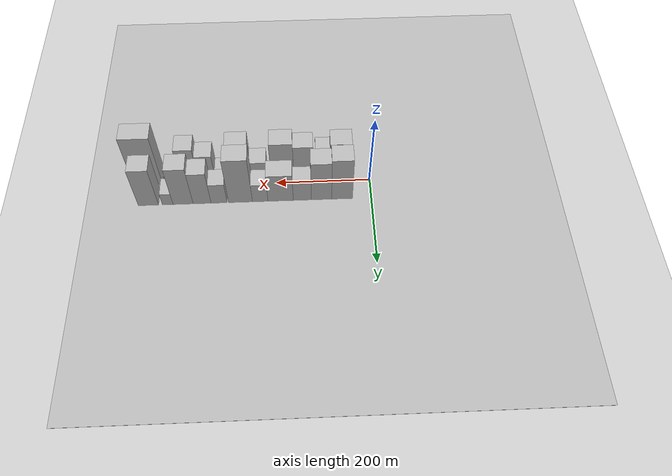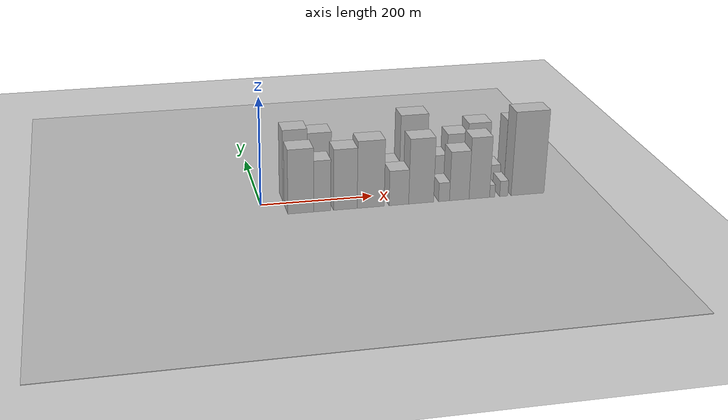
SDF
<?xml version="1.0" encoding="utf-8"?>

<sdf version="1.6">

   <world name="default">

      <gui fullscreen="0">

         <camera name="user_camera">

            <pose>-15 0 4.57585 0 0 0</pose>

            <view_controller>orbit</view_controller>

         </camera>

      </gui>

      <scene>

         <sky>

           <clouds>

             <speed>12</speed>

           </clouds>

         </sky>

         <ambient>0.4 0.4 0.4 1</ambient>

         <background>0.7 0.7 0.7 1</background>

         <shadows>1</shadows>

      </scene>

      <gravity>0 0 -9.8066</gravity>

      <magnetic_field>6e-06 2.3e-05 -4.2e-05</magnetic_field>

      <physics default="0" name="default_physics" type="ode">

         <ode>

            <solver>

               <type>quick</type>

               <iters>10</iters>

               <sor>1.0</sor>

               <use_dynamic_moi_rescaling>0</use_dynamic_moi_rescaling>

            </solver>

            <constraints>

               <cfm>0</cfm>

               <erp>0.2</erp>

               <contact_max_correcting_vel>100</contact_max_correcting_vel>

               <contact_surface_layer>0.001</contact_surface_layer>

            </constraints>

         </ode>

         <max_step_size>0.004</max_step_size>

         <real_time_factor>1</real_time_factor>

         <real_time_update_rate>250</real_time_update_rate>

      </physics>

      <light name="sun" type="directional">

         <cast_shadows>1</cast_shadows>

         <pose>0 0 10 0 0 0</pose>

         <diffuse>0.8 0.8 0.8 1</diffuse>

         <specular>0.2 0.2 0.2 1</specular>

         <attenuation>

            <range>1000</range>

            <constant>0.9</constant>

            <linear>0.01</linear>

            <quadratic>0.001</quadratic>

         </attenuation>

         <direction>-0.5 0.1 -0.9</direction>

      </light>

      <include>

         <name>ground_plane_1</name>

         <uri>model://HANNAS_ground_plane</uri>

         <pose>0 0 0  0 0 0</pose>

      </include>

      <include>

         <name>ground_plane_2</name>

         <uri>model://HANNAS_ground_plane</uri>

         <pose>100 0 0  0 0 0</pose>

      </include>

      <model name="building_1">

         <static>1</static>

         <pose frame="">61.9810 26.0000 0 0.000000 0.000000 1.570796</pose>

         <link name="link">

            <pose frame="">0 0 67.50 0 0 0</pose>

            <collision name="collision">

               <geometry>

                  <box>

                     <size>40.0000 43.9621 135.0000</size>

                  </box>

               </geometry>

               <max_contacts>10</max_contacts>

               <surface>

                  <contact>

                     <ode/>

                  </contact>

                  <bounce/>

                  <friction>

                     <torsional>

                        <ode/>

                     </torsional>

                     <ode/>

                  </friction>

               </surface>

            </collision>

            <visual name="visual">

               <cast_shadows>0</cast_shadows>

               <geometry>

                  <box>

                     <size>40.0000 43.9621 135.0000</size>

                  </box>

               </geometry>

               <material>

                  <script>

                     <uri>model://HANNAS_wall/materials/scripts</uri>

                     <uri>model://HANNAS_wall/materials/textures</uri>

                     <name>vrc/HANNAS_wall</name>

                  </script>

               </material>

            </visual>

            <self_collide>0</self_collide>

            <enable_wind>0</enable_wind>

            <kinematic>0</kinematic>

         </link>

      </model>

      <model name="building_2">

         <static>1</static>

         <pose frame="">105.4015 26.0000 0 0.000000 0.000000 1.570796</pose>

         <link name="link">

            <pose frame="">0 0 63.00 0 0 0</pose>

            <collision name="collision">

               <geometry>

                  <box>

                     <size>40.0000 42.8789 126.0000</size>

                  </box>

               </geometry>

               <max_contacts>10</max_contacts>

               <surface>

                  <contact>

                     <ode/>

                  </contact>

                  <bounce/>

                  <friction>

                     <torsional>

                        <ode/>

                     </torsional>

                     <ode/>

                  </friction>

               </surface>

            </collision>

            <visual name="visual">

               <cast_shadows>0</cast_shadows>

               <geometry>

                  <box>

                     <size>40.0000 42.8789 126.0000</size>

                  </box>

               </geometry>

               <material>

                  <script>

                     <uri>model://HANNAS_wall/materials/scripts</uri>

                     <uri>model://HANNAS_wall/materials/textures</uri>

                     <name>vrc/HANNAS_wall</name>

                  </script>

               </material>

            </visual>

            <self_collide>0</self_collide>

            <enable_wind>0</enable_wind>

            <kinematic>0</kinematic>

         </link>

      </model>

      <model name="building_3">

         <static>1</static>

         <pose frame="">145.8711 26.0000 0 0.000000 0.000000 1.570796</pose>

         <link name="link">

            <pose frame="">0 0 33.00 0 0 0</pose>

            <collision name="collision">

               <geometry>

                  <box>

                     <size>40.0000 38.0603 66.0000</size>

                  </box>

               </geometry>

               <max_contacts>10</max_contacts>

               <surface>

                  <contact>

                     <ode/>

                  </contact>

                  <bounce/>

                  <friction>

                     <torsional>

                        <ode/>

                     </torsional>

                     <ode/>

                  </friction>

               </surface>

            </collision>

            <visual name="visual">

               <cast_shadows>0</cast_shadows>

               <geometry>

                  <box>

                     <size>40.0000 38.0603 66.0000</size>

                  </box>

               </geometry>

               <material>

                  <script>

                     <uri>model://HANNAS_wall/materials/scripts</uri>

                     <uri>model://HANNAS_wall/materials/textures</uri>

                     <name>vrc/HANNAS_wall</name>

                  </script>

               </material>

            </visual>

            <self_collide>0</self_collide>

            <enable_wind>0</enable_wind>

            <kinematic>0</kinematic>

         </link>

      </model>

      <model name="building_4">

         <static>1</static>

         <pose frame="">191.5454 26.0000 0 0.000000 0.000000 1.570796</pose>

         <link name="link">

            <pose frame="">0 0 45.00 0 0 0</pose>

            <collision name="collision">

               <geometry>

                  <box>

                     <size>40.0000 53.2883 90.0000</size>

                  </box>

               </geometry>

               <max_contacts>10</max_contacts>

               <surface>

                  <contact>

                     <ode/>

                  </contact>

                  <bounce/>

                  <friction>

                     <torsional>

                        <ode/>

                     </torsional>

                     <ode/>

                  </friction>

               </surface>

            </collision>

            <visual name="visual">

               <cast_shadows>0</cast_shadows>

               <geometry>

                  <box>

                     <size>40.0000 53.2883 90.0000</size>

                  </box>

               </geometry>

               <material>

                  <script>

                     <uri>model://HANNAS_wall/materials/scripts</uri>

                     <uri>model://HANNAS_wall/materials/textures</uri>

                     <name>vrc/HANNAS_wall</name>

                  </script>

               </material>

            </visual>

            <self_collide>0</self_collide>

            <enable_wind>0</enable_wind>

            <kinematic>0</kinematic>

         </link>

      </model>

      <model name="building_5">

         <static>1</static>

         <pose frame="">234.5007 26.0000 0 0.000000 0.000000 1.570796</pose>

         <link name="link">

            <pose frame="">0 0 30.00 0 0 0</pose>

            <collision name="collision">

               <geometry>

                  <box>

                     <size>40.0000 32.6223 60.0000</size>

                  </box>

               </geometry>

               <max_contacts>10</max_contacts>

               <surface>

                  <contact>

                     <ode/>

                  </contact>

                  <bounce/>

                  <friction>

                     <torsional>

                        <ode/>

                     </torsional>

                     <ode/>

                  </friction>

               </surface>

            </collision>

            <visual name="visual">

               <cast_shadows>0</cast_shadows>

               <geometry>

                  <box>

                     <size>40.0000 32.6223 60.0000</size>

                  </box>

               </geometry>

               <material>

                  <script>

                     <uri>model://HANNAS_wall/materials/scripts</uri>

                     <uri>model://HANNAS_wall/materials/textures</uri>

                     <name>vrc/HANNAS_wall</name>

                  </script>

               </material>

            </visual>

            <self_collide>0</self_collide>

            <enable_wind>0</enable_wind>

            <kinematic>0</kinematic>

         </link>

      </model>

      <model name="building_6">

         <static>1</static>

         <pose frame="">275.9102 26.0000 0 0.000000 0.000000 1.570796</pose>

         <link name="link">

            <pose frame="">0 0 73.50 0 0 0</pose>

            <collision name="collision">

               <geometry>

                  <box>

                     <size>40.0000 50.1968 147.0000</size>

                  </box>

               </geometry>

               <max_contacts>10</max_contacts>

               <surface>

                  <contact>

                     <ode/>

                  </contact>

                  <bounce/>

                  <friction>

                     <torsional>

                        <ode/>

                     </torsional>

                     <ode/>

                  </friction>

               </surface>

            </collision>

            <visual name="visual">

               <cast_shadows>0</cast_shadows>

               <geometry>

                  <box>

                     <size>40.0000 50.1968 147.0000</size>

                  </box>

               </geometry>

               <material>

                  <script>

                     <uri>model://HANNAS_wall/materials/scripts</uri>

                     <uri>model://HANNAS_wall/materials/textures</uri>

                     <name>vrc/HANNAS_wall</name>

                  </script>

               </material>

            </visual>

            <self_collide>0</self_collide>

            <enable_wind>0</enable_wind>

            <kinematic>0</kinematic>

         </link>

      </model>

      <model name="building_7">

         <static>1</static>

         <pose frame="">320.8591 26.0000 0 0.000000 0.000000 1.570796</pose>

         <link name="link">

            <pose frame="">0 0 33.00 0 0 0</pose>

            <collision name="collision">

               <geometry>

                  <box>

                     <size>40.0000 33.7010 66.0000</size>

                  </box>

               </geometry>

               <max_contacts>10</max_contacts>

               <surface>

                  <contact>

                     <ode/>

                  </contact>

                  <bounce/>

                  <friction>

                     <torsional>

                        <ode/>

                     </torsional>

                     <ode/>

                  </friction>

               </surface>

            </collision>

            <visual name="visual">

               <cast_shadows>0</cast_shadows>

               <geometry>

                  <box>

                     <size>40.0000 33.7010 66.0000</size>

                  </box>

               </geometry>

               <material>

                  <script>

                     <uri>model://HANNAS_wall/materials/scripts</uri>

                     <uri>model://HANNAS_wall/materials/textures</uri>

                     <name>vrc/HANNAS_wall</name>

                  </script>

               </material>

            </visual>

            <self_collide>0</self_collide>

            <enable_wind>0</enable_wind>

            <kinematic>0</kinematic>

         </link>

      </model>

      <model name="building_8">

         <static>1</static>

         <pose frame="">356.5244 26.0000 0 0.000000 0.000000 1.570796</pose>

         <link name="link">

            <pose frame="">0 0 52.50 0 0 0</pose>

            <collision name="collision">

               <geometry>

                  <box>

                     <size>40.0000 37.6295 105.0000</size>

                  </box>

               </geometry>

               <max_contacts>10</max_contacts>

               <surface>

                  <contact>

                     <ode/>

                  </contact>

                  <bounce/>

                  <friction>

                     <torsional>

                        <ode/>

                     </torsional>

                     <ode/>

                  </friction>

               </surface>

            </collision>

            <visual name="visual">

               <cast_shadows>0</cast_shadows>

               <geometry>

                  <box>

                     <size>40.0000 37.6295 105.0000</size>

                  </box>

               </geometry>

               <material>

                  <script>

                     <uri>model://HANNAS_wall/materials/scripts</uri>

                     <uri>model://HANNAS_wall/materials/textures</uri>

                     <name>vrc/HANNAS_wall</name>

                  </script>

               </material>

            </visual>

            <self_collide>0</self_collide>

            <enable_wind>0</enable_wind>

            <kinematic>0</kinematic>

         </link>

      </model>

      <model name="building_9">

         <static>1</static>

         <pose frame="">396.3831 26.0000 0 0.000000 0.000000 1.570796</pose>

         <link name="link">

            <pose frame="">0 0 61.50 0 0 0</pose>

            <collision name="collision">

               <geometry>

                  <box>

                     <size>40.0000 42.0881 123.0000</size>

                  </box>

               </geometry>

               <max_contacts>10</max_contacts>

               <surface>

                  <contact>

                     <ode/>

                  </contact>

                  <bounce/>

                  <friction>

                     <torsional>

                        <ode/>

                     </torsional>

                     <ode/>

                  </friction>

               </surface>

            </collision>

            <visual name="visual">

               <cast_shadows>0</cast_shadows>

               <geometry>

                  <box>

                     <size>40.0000 42.0881 123.0000</size>

                  </box>

               </geometry>

               <material>

                  <script>

                     <uri>model://HANNAS_wall/materials/scripts</uri>

                     <uri>model://HANNAS_wall/materials/textures</uri>

                     <name>vrc/HANNAS_wall</name>

                  </script>

               </material>

            </visual>

            <self_collide>0</self_collide>

            <enable_wind>0</enable_wind>

            <kinematic>0</kinematic>

         </link>

      </model>

      <model name="building_10">

         <static>1</static>

         <pose frame="">428.5450 26.0000 0 0.000000 0.000000 1.570796</pose>

         <link name="link">

            <pose frame="">0 0 19.50 0 0 0</pose>

            <collision name="collision">

               <geometry>

                  <box>

                     <size>40.0000 22.2357 39.0000</size>

                  </box>

               </geometry>

               <max_contacts>10</max_contacts>

               <surface>

                  <contact>

                     <ode/>

                  </contact>

                  <bounce/>

                  <friction>

                     <torsional>

                        <ode/>

                     </torsional>

                     <ode/>

                  </friction>

               </surface>

            </collision>

            <visual name="visual">

               <cast_shadows>0</cast_shadows>

               <geometry>

                  <box>

                     <size>40.0000 22.2357 39.0000</size>

                  </box>

               </geometry>

               <material>

                  <script>

                     <uri>model://HANNAS_wall/materials/scripts</uri>

                     <uri>model://HANNAS_wall/materials/textures</uri>

                     <name>vrc/HANNAS_wall</name>

                  </script>

               </material>

            </visual>

            <self_collide>0</self_collide>

            <enable_wind>0</enable_wind>

            <kinematic>0</kinematic>

         </link>

      </model>

      <model name="building_11">

         <static>1</static>

         <pose frame="">468.7407 26.0000 0 0.000000 0.000000 1.570796</pose>

         <link name="link">

            <pose frame="">0 0 61.50 0 0 0</pose>

            <collision name="collision">

               <geometry>

                  <box>

                     <size>40.0000 42.1557 123.0000</size>

                  </box>

               </geometry>

               <max_contacts>10</max_contacts>

               <surface>

                  <contact>

                     <ode/>

                  </contact>

                  <bounce/>

                  <friction>

                     <torsional>

                        <ode/>

                     </torsional>

                     <ode/>

                  </friction>

               </surface>

            </collision>

            <visual name="visual">

               <cast_shadows>0</cast_shadows>

               <geometry>

                  <box>

                     <size>40.0000 42.1557 123.0000</size>

                  </box>

               </geometry>

               <material>

                  <script>

                     <uri>model://HANNAS_wall/materials/scripts</uri>

                     <uri>model://HANNAS_wall/materials/textures</uri>

                     <name>vrc/HANNAS_wall</name>

                  </script>

               </material>

            </visual>

            <self_collide>0</self_collide>

            <enable_wind>0</enable_wind>

            <kinematic>0</kinematic>

         </link>

      </model>

      <model name="building_12">

         <static>1</static>

         <pose frame="">62.5650 -26.0000 0 0.000000 0.000000 1.570796</pose>

         <link name="link">

            <pose frame="">0 0 60.00 0 0 0</pose>

            <collision name="collision">

               <geometry>

                  <box>

                     <size>40.0000 45.1300 120.0000</size>

                  </box>

               </geometry>

               <max_contacts>10</max_contacts>

               <surface>

                  <contact>

                     <ode/>

                  </contact>

                  <bounce/>

                  <friction>

                     <torsional>

                        <ode/>

                     </torsional>

                     <ode/>

                  </friction>

               </surface>

            </collision>

            <visual name="visual">

               <cast_shadows>0</cast_shadows>

               <geometry>

                  <box>

                     <size>40.0000 45.1300 120.0000</size>

                  </box>

               </geometry>

               <material>

                  <script>

                     <uri>model://HANNAS_wall/materials/scripts</uri>

                     <uri>model://HANNAS_wall/materials/textures</uri>

                     <name>vrc/HANNAS_wall</name>

                  </script>

               </material>

            </visual>

            <self_collide>0</self_collide>

            <enable_wind>0</enable_wind>

            <kinematic>0</kinematic>

         </link>

      </model>

      <model name="building_13">

         <static>1</static>

         <pose frame="">100.2999 -26.0000 0 0.000000 0.000000 1.570796</pose>

         <link name="link">

            <pose frame="">0 0 48.00 0 0 0</pose>

            <collision name="collision">

               <geometry>

                  <box>

                     <size>40.0000 30.3398 96.0000</size>

                  </box>

               </geometry>

               <max_contacts>10</max_contacts>

               <surface>

                  <contact>

                     <ode/>

                  </contact>

                  <bounce/>

                  <friction>

                     <torsional>

                        <ode/>

                     </torsional>

                     <ode/>

                  </friction>

               </surface>

            </collision>

            <visual name="visual">

               <cast_shadows>0</cast_shadows>

               <geometry>

                  <box>

                     <size>40.0000 30.3398 96.0000</size>

                  </box>

               </geometry>

               <material>

                  <script>

                     <uri>model://HANNAS_wall/materials/scripts</uri>

                     <uri>model://HANNAS_wall/materials/textures</uri>

                     <name>vrc/HANNAS_wall</name>

                  </script>

               </material>

            </visual>

            <self_collide>0</self_collide>

            <enable_wind>0</enable_wind>

            <kinematic>0</kinematic>

         </link>

      </model>

      <model name="building_14">

         <static>1</static>

         <pose frame="">141.3969 -26.0000 0 0.000000 0.000000 1.570796</pose>

         <link name="link">

            <pose frame="">0 0 57.00 0 0 0</pose>

            <collision name="collision">

               <geometry>

                  <box>

                     <size>40.0000 41.8542 114.0000</size>

                  </box>

               </geometry>

               <max_contacts>10</max_contacts>

               <surface>

                  <contact>

                     <ode/>

                  </contact>

                  <bounce/>

                  <friction>

                     <torsional>

                        <ode/>

                     </torsional>

                     <ode/>

                  </friction>

               </surface>

            </collision>

            <visual name="visual">

               <cast_shadows>0</cast_shadows>

               <geometry>

                  <box>

                     <size>40.0000 41.8542 114.0000</size>

                  </box>

               </geometry>

               <material>

                  <script>

                     <uri>model://HANNAS_wall/materials/scripts</uri>

                     <uri>model://HANNAS_wall/materials/textures</uri>

                     <name>vrc/HANNAS_wall</name>

                  </script>

               </material>

            </visual>

            <self_collide>0</self_collide>

            <enable_wind>0</enable_wind>

            <kinematic>0</kinematic>

         </link>

      </model>

      <model name="building_15">

         <static>1</static>

         <pose frame="">186.4607 -26.0000 0 0.000000 0.000000 1.570796</pose>

         <link name="link">

            <pose frame="">0 0 63.00 0 0 0</pose>

            <collision name="collision">

               <geometry>

                  <box>

                     <size>40.0000 48.2736 126.0000</size>

                  </box>

               </geometry>

               <max_contacts>10</max_contacts>

               <surface>

                  <contact>

                     <ode/>

                  </contact>

                  <bounce/>

                  <friction>

                     <torsional>

                        <ode/>

                     </torsional>

                     <ode/>

                  </friction>

               </surface>

            </collision>

            <visual name="visual">

               <cast_shadows>0</cast_shadows>

               <geometry>

                  <box>

                     <size>40.0000 48.2736 126.0000</size>

                  </box>

               </geometry>

               <material>

                  <script>

                     <uri>model://HANNAS_wall/materials/scripts</uri>

                     <uri>model://HANNAS_wall/materials/textures</uri>

                     <name>vrc/HANNAS_wall</name>

                  </script>

               </material>

            </visual>

            <self_collide>0</self_collide>

            <enable_wind>0</enable_wind>

            <kinematic>0</kinematic>

         </link>

      </model>

      <model name="building_16">

         <static>1</static>

         <pose frame="">237.3109 -26.0000 0 0.000000 0.000000 1.570796</pose>

         <link name="link">

            <pose frame="">0 0 33.00 0 0 0</pose>

            <collision name="collision">

               <geometry>

                  <box>

                     <size>40.0000 35.4268 66.0000</size>

                  </box>

               </geometry>

               <max_contacts>10</max_contacts>

               <surface>

                  <contact>

                     <ode/>

                  </contact>

                  <bounce/>

                  <friction>

                     <torsional>

                        <ode/>

                     </torsional>

                     <ode/>

                  </friction>

               </surface>

            </collision>

            <visual name="visual">

               <cast_shadows>0</cast_shadows>

               <geometry>

                  <box>

                     <size>40.0000 35.4268 66.0000</size>

                  </box>

               </geometry>

               <material>

                  <script>

                     <uri>model://HANNAS_wall/materials/scripts</uri>

                     <uri>model://HANNAS_wall/materials/textures</uri>

                     <name>vrc/HANNAS_wall</name>

                  </script>

               </material>

            </visual>

            <self_collide>0</self_collide>

            <enable_wind>0</enable_wind>

            <kinematic>0</kinematic>

         </link>

      </model>

      <model name="building_17">

         <static>1</static>

         <pose frame="">277.6862 -26.0000 0 0.000000 0.000000 1.570796</pose>

         <link name="link">

            <pose frame="">0 0 61.50 0 0 0</pose>

            <collision name="collision">

               <geometry>

                  <box>

                     <size>40.0000 45.3237 123.0000</size>

                  </box>

               </geometry>

               <max_contacts>10</max_contacts>

               <surface>

                  <contact>

                     <ode/>

                  </contact>

                  <bounce/>

                  <friction>

                     <torsional>

                        <ode/>

                     </torsional>

                     <ode/>

                  </friction>

               </surface>

            </collision>

            <visual name="visual">

               <cast_shadows>0</cast_shadows>

               <geometry>

                  <box>

                     <size>40.0000 45.3237 123.0000</size>

                  </box>

               </geometry>

               <material>

                  <script>

                     <uri>model://HANNAS_wall/materials/scripts</uri>

                     <uri>model://HANNAS_wall/materials/textures</uri>

                     <name>vrc/HANNAS_wall</name>

                  </script>

               </material>

            </visual>

            <self_collide>0</self_collide>

            <enable_wind>0</enable_wind>

            <kinematic>0</kinematic>

         </link>

      </model>

      <model name="building_18">

         <static>1</static>

         <pose frame="">319.3739 -26.0000 0 0.000000 0.000000 1.570796</pose>

         <link name="link">

            <pose frame="">0 0 18.00 0 0 0</pose>

            <collision name="collision">

               <geometry>

                  <box>

                     <size>40.0000 20.0516 36.0000</size>

                  </box>

               </geometry>

               <max_contacts>10</max_contacts>

               <surface>

                  <contact>

                     <ode/>

                  </contact>

                  <bounce/>

                  <friction>

                     <torsional>

                        <ode/>

                     </torsional>

                     <ode/>

                  </friction>

               </surface>

            </collision>

            <visual name="visual">

               <cast_shadows>0</cast_shadows>

               <geometry>

                  <box>

                     <size>40.0000 20.0516 36.0000</size>

                  </box>

               </geometry>

               <material>

                  <script>

                     <uri>model://HANNAS_wall/materials/scripts</uri>

                     <uri>model://HANNAS_wall/materials/textures</uri>

                     <name>vrc/HANNAS_wall</name>

                  </script>

               </material>

            </visual>

            <self_collide>0</self_collide>

            <enable_wind>0</enable_wind>

            <kinematic>0</kinematic>

         </link>

      </model>

      <model name="building_19">

         <static>1</static>

         <pose frame="">347.3549 -26.0000 0 0.000000 0.000000 1.570796</pose>

         <link name="link">

            <pose frame="">0 0 46.50 0 0 0</pose>

            <collision name="collision">

               <geometry>

                  <box>

                     <size>40.0000 35.9105 93.0000</size>

                  </box>

               </geometry>

               <max_contacts>10</max_contacts>

               <surface>

                  <contact>

                     <ode/>

                  </contact>

                  <bounce/>

                  <friction>

                     <torsional>

                        <ode/>

                     </torsional>

                     <ode/>

                  </friction>

               </surface>

            </collision>

            <visual name="visual">

               <cast_shadows>0</cast_shadows>

               <geometry>

                  <box>

                     <size>40.0000 35.9105 93.0000</size>

                  </box>

               </geometry>

               <material>

                  <script>

                     <uri>model://HANNAS_wall/materials/scripts</uri>

                     <uri>model://HANNAS_wall/materials/textures</uri>

                     <name>vrc/HANNAS_wall</name>

                  </script>

               </material>

            </visual>

            <self_collide>0</self_collide>

            <enable_wind>0</enable_wind>

            <kinematic>0</kinematic>

         </link>

      </model>

      <model name="building_20">

         <static>1</static>

         <pose frame="">384.3169 -26.0000 0 0.000000 0.000000 1.570796</pose>

         <link name="link">

            <pose frame="">0 0 58.50 0 0 0</pose>

            <collision name="collision">

               <geometry>

                  <box>

                     <size>40.0000 38.0135 117.0000</size>

                  </box>

               </geometry>

               <max_contacts>10</max_contacts>

               <surface>

                  <contact>

                     <ode/>

                  </contact>

                  <bounce/>

                  <friction>

                     <torsional>

                        <ode/>

                     </torsional>

                     <ode/>

                  </friction>

               </surface>

            </collision>

            <visual name="visual">

               <cast_shadows>0</cast_shadows>

               <geometry>

                  <box>

                     <size>40.0000 38.0135 117.0000</size>

                  </box>

               </geometry>

               <material>

                  <script>

                     <uri>model://HANNAS_wall/materials/scripts</uri>

                     <uri>model://HANNAS_wall/materials/textures</uri>

                     <name>vrc/HANNAS_wall</name>

                  </script>

               </material>

            </visual>

            <self_collide>0</self_collide>

            <enable_wind>0</enable_wind>

            <kinematic>0</kinematic>

         </link>

      </model>

      <model name="building_21">

         <static>1</static>

         <pose frame="">408.1964 -26.0000 0 0.000000 0.000000 1.570796</pose>

         <link name="link">

            <pose frame="">0 0 12.00 0 0 0</pose>

            <collision name="collision">

               <geometry>

                  <box>

                     <size>40.0000 9.7456 24.0000</size>

                  </box>

               </geometry>

               <max_contacts>10</max_contacts>

               <surface>

                  <contact>

                     <ode/>

                  </contact>

                  <bounce/>

                  <friction>

                     <torsional>

                        <ode/>

                     </torsional>

                     <ode/>

                  </friction>

               </surface>

            </collision>

            <visual name="visual">

               <cast_shadows>0</cast_shadows>

               <geometry>

                  <box>

                     <size>40.0000 9.7456 24.0000</size>

                  </box>

               </geometry>

               <material>

                  <script>

                     <uri>model://HANNAS_wall/materials/scripts</uri>

                     <uri>model://HANNAS_wall/materials/textures</uri>

                     <name>vrc/HANNAS_wall</name>

                  </script>

               </material>

            </visual>

            <self_collide>0</self_collide>

            <enable_wind>0</enable_wind>

            <kinematic>0</kinematic>

         </link>

      </model>

      <model name="building_22">

         <static>1</static>

         <pose frame="">429.7135 -26.0000 0 0.000000 0.000000 1.570796</pose>

         <link name="link">

            <pose frame="">0 0 15.00 0 0 0</pose>

            <collision name="collision">

               <geometry>

                  <box>

                     <size>40.0000 15.2887 30.0000</size>

                  </box>

               </geometry>

               <max_contacts>10</max_contacts>

               <surface>

                  <contact>

                     <ode/>

                  </contact>

                  <bounce/>

                  <friction>

                     <torsional>

                        <ode/>

                     </torsional>

                     <ode/>

                  </friction>

               </surface>

            </collision>

            <visual name="visual">

               <cast_shadows>0</cast_shadows>

               <geometry>

                  <box>

                     <size>40.0000 15.2887 30.0000</size>

                  </box>

               </geometry>

               <material>

                  <script>

                     <uri>model://HANNAS_wall/materials/scripts</uri>

                     <uri>model://HANNAS_wall/materials/textures</uri>

                     <name>vrc/HANNAS_wall</name>

                  </script>

               </material>

            </visual>

            <self_collide>0</self_collide>

            <enable_wind>0</enable_wind>

            <kinematic>0</kinematic>

         </link>

      </model>

      <model name="building_23">

         <static>1</static>

         <pose frame="">474.1459 -26.0000 0 0.000000 0.000000 1.570796</pose>

         <link name="link">

            <pose frame="">0 0 79.50 0 0 0</pose>

            <collision name="collision">

               <geometry>

                  <box>

                     <size>40.0000 61.5761 159.0000</size>

                  </box>

               </geometry>

               <max_contacts>10</max_contacts>

               <surface>

                  <contact>

                     <ode/>

                  </contact>

                  <bounce/>

                  <friction>

                     <torsional>

                        <ode/>

                     </torsional>

                     <ode/>

                  </friction>

               </surface>

            </collision>

            <visual name="visual">

               <cast_shadows>0</cast_shadows>

               <geometry>

                  <box>

                     <size>40.0000 61.5761 159.0000</size>

                  </box>

               </geometry>

               <material>

                  <script>

                     <uri>model://HANNAS_wall/materials/scripts</uri>

                     <uri>model://HANNAS_wall/materials/textures</uri>

                     <name>vrc/HANNAS_wall</name>

                  </script>

               </material>

            </visual>

            <self_collide>0</self_collide>

            <enable_wind>0</enable_wind>

            <kinematic>0</kinematic>

         </link>

      </model>

   </world>

</sdf>

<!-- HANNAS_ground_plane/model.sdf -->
<sdf version="1.4">
<model name="HANNAS_ground_plane">
  <static>true</static>
    <link name="link">
      <collision name="collision">
        <geometry>
          <plane>
            <normal>0 0 1</normal>
            <size>1000 1000</size>
          </plane>
        </geometry>
        <surface>
          <friction>
            <ode>
              <mu>100</mu>
              <mu2>50</mu2>
            </ode>
          </friction>
        </surface>
      </collision>
      <visual name="visual">
        <cast_shadows>false</cast_shadows>
        <geometry>
          <plane>
            <normal>0 0 1</normal>
            <size>1000 1000</size>
          </plane>
        </geometry>
        <material>
          <script>
            <uri>model://HANNAS_ground_plane/materials/scripts/HANNAS_ground_plane.material</uri>
	    <uri>model://HANNAS_ground_plane/materials/textures</uri>
            <name>HANNASGroundPlane/Image</name>
          </script>
        </material>
      </visual>
    </link>
  </model>
</sdf>
